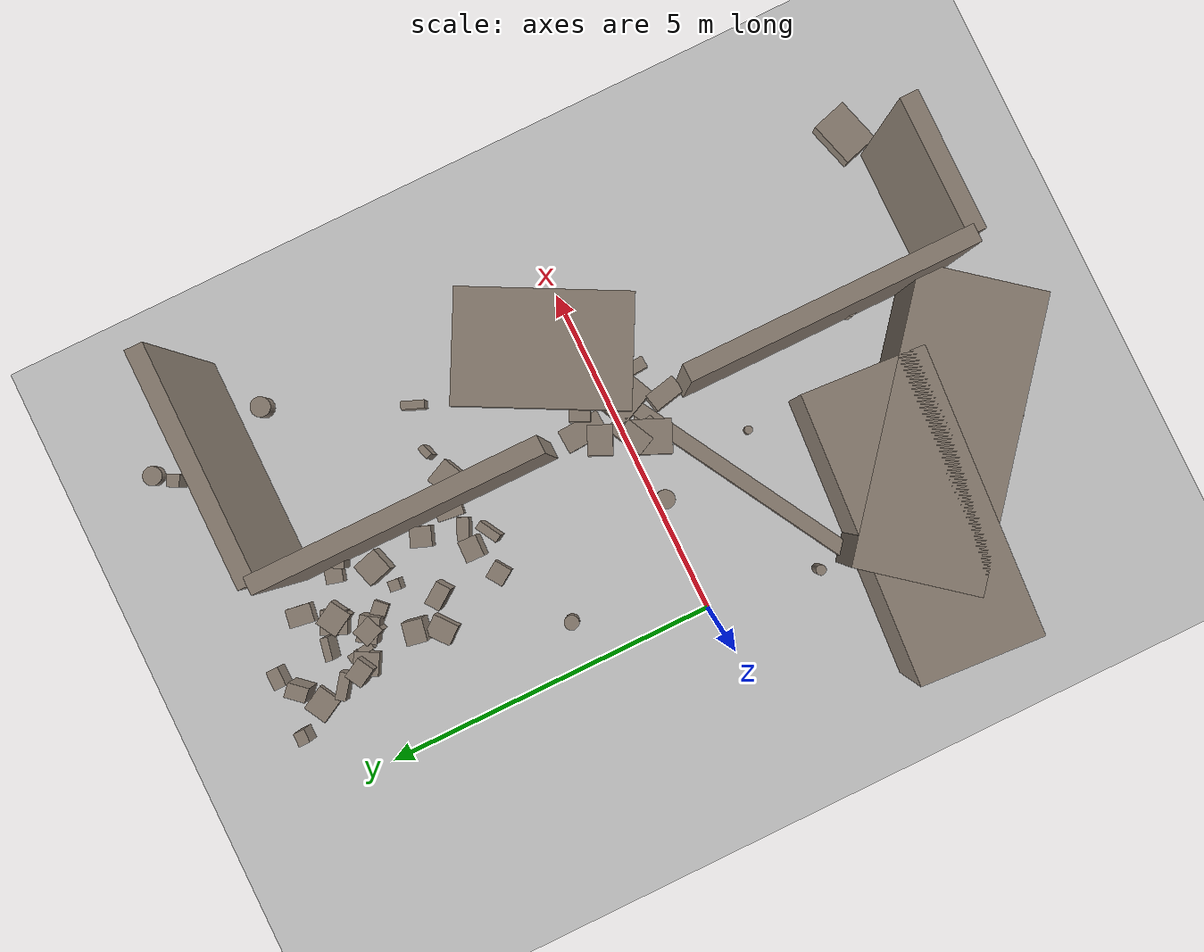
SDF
<sdf version="1.6">
 <world name="default">
  <model name="ground_plane">
   <static>1</static>
   <link name="link">
    <collision name="collision">
     <geometry><plane><normal>0 0 1</normal><size>100 100</size></plane></geometry>
     <surface><friction><ode><mu>100</mu><mu2>50</mu2></ode></friction></surface>
    </collision>
    <visual name="visual">
     <cast_shadows>0</cast_shadows>
     <geometry><plane><normal>0 0 1</normal><size>100 100</size></plane></geometry>
     <material>
      <script><uri>file://media/materials/scripts/gazebo.material</uri><name>Gazebo/Grey</name></script>
     </material>
    </visual>
   </link>
  </model>
  <model name="outer0_0">
   <static>1</static>
   <pose>3.000 -3.000 1.400 0 0.0000 1.5708</pose>
   <link name="l">
    <collision name="c"><geometry><box><size>4.000 0.250 2.800</size></box></geometry></collision>
    <visual name="v">
     <geometry><box><size>4.000 0.250 2.800</size></box></geometry>
     <material><ambient>0.55 0.5 0.45 1</ambient><diffuse>0.55 0.5 0.45 1</diffuse></material>
    </visual>
   </link>
  </model>
  <model name="outer0_1">
   <static>1</static>
   <pose>3.000 3.000 1.400 0 0.0000 1.5708</pose>
   <link name="l">
    <collision name="c"><geometry><box><size>4.000 0.250 2.800</size></box></geometry></collision>
    <visual name="v">
     <geometry><box><size>4.000 0.250 2.800</size></box></geometry>
     <material><ambient>0.55 0.5 0.45 1</ambient><diffuse>0.55 0.5 0.45 1</diffuse></material>
    </visual>
   </link>
  </model>
  <model name="outer2_0">
   <static>1</static>
   <pose>3.962 -5.000 1.400 0 0.0000 0.0000</pose>
   <link name="l">
    <collision name="c"><geometry><box><size>1.925 0.250 2.800</size></box></geometry></collision>
    <visual name="v">
     <geometry><box><size>1.925 0.250 2.800</size></box></geometry>
     <material><ambient>0.55 0.5 0.45 1</ambient><diffuse>0.55 0.5 0.45 1</diffuse></material>
    </visual>
   </link>
  </model>
  <model name="outer3_0">
   <static>1</static>
   <pose>4.643 5.000 1.400 0 0.0000 0.0000</pose>
   <link name="l">
    <collision name="c"><geometry><box><size>3.286 0.250 2.800</size></box></geometry></collision>
    <visual name="v">
     <geometry><box><size>3.286 0.250 2.800</size></box></geometry>
     <material><ambient>0.55 0.5 0.45 1</ambient><diffuse>0.55 0.5 0.45 1</diffuse></material>
    </visual>
   </link>
  </model>
  <model name="rubble_15">
   <static>1</static>
   <pose>3.180 -0.242 0.234 0 0.0000 0.4363</pose>
   <link name="l">
    <collision name="c"><geometry><box><size>0.410 0.648 0.467</size></box></geometry></collision>
    <visual name="v">
     <geometry><box><size>0.410 0.648 0.467</size></box></geometry>
     <material><ambient>0.55 0.5 0.45 1</ambient><diffuse>0.55 0.5 0.45 1</diffuse></material>
    </visual>
   </link>
  </model>
  <model name="rubble_16">
   <static>1</static>
   <pose>2.562 -0.337 0.169 0 0.0000 2.7282</pose>
   <link name="l">
    <collision name="c"><geometry><box><size>0.502 0.598 0.339</size></box></geometry></collision>
    <visual name="v">
     <geometry><box><size>0.502 0.598 0.339</size></box></geometry>
     <material><ambient>0.55 0.5 0.45 1</ambient><diffuse>0.55 0.5 0.45 1</diffuse></material>
    </visual>
   </link>
  </model>
  <model name="rubble_17">
   <static>1</static>
   <pose>2.827 0.339 0.270 0 0.0000 2.7171</pose>
   <link name="l">
    <collision name="c"><geometry><box><size>0.433 0.361 0.541</size></box></geometry></collision>
    <visual name="v">
     <geometry><box><size>0.433 0.361 0.541</size></box></geometry>
     <material><ambient>0.55 0.5 0.45 1</ambient><diffuse>0.55 0.5 0.45 1</diffuse></material>
    </visual>
   </link>
  </model>
  <model name="rubble_18">
   <static>1</static>
   <pose>3.053 0.508 0.091 0 0.0000 0.0569</pose>
   <link name="l">
    <collision name="c"><geometry><box><size>0.356 0.635 0.182</size></box></geometry></collision>
    <visual name="v">
     <geometry><box><size>0.356 0.635 0.182</size></box></geometry>
     <material><ambient>0.55 0.5 0.45 1</ambient><diffuse>0.55 0.5 0.45 1</diffuse></material>
    </visual>
   </link>
  </model>
  <model name="rubble_19">
   <static>1</static>
   <pose>3.021 -0.767 0.273 0 0.0000 0.2143</pose>
   <link name="l">
    <collision name="c"><geometry><box><size>0.268 0.468 0.547</size></box></geometry></collision>
    <visual name="v">
     <geometry><box><size>0.268 0.468 0.547</size></box></geometry>
     <material><ambient>0.55 0.5 0.45 1</ambient><diffuse>0.55 0.5 0.45 1</diffuse></material>
    </visual>
   </link>
  </model>
  <model name="rubble_20">
   <static>1</static>
   <pose>2.886 -0.317 0.119 0 0.0000 0.8856</pose>
   <link name="l">
    <collision name="c"><geometry><box><size>0.156 0.183 0.239</size></box></geometry></collision>
    <visual name="v">
     <geometry><box><size>0.156 0.183 0.239</size></box></geometry>
     <material><ambient>0.55 0.5 0.45 1</ambient><diffuse>0.55 0.5 0.45 1</diffuse></material>
    </visual>
   </link>
  </model>
  <model name="rubble_21">
   <static>1</static>
   <pose>2.730 -0.315 0.154 0 0.0000 1.8635</pose>
   <link name="l">
    <collision name="c"><geometry><box><size>0.341 0.151 0.307</size></box></geometry></collision>
    <visual name="v">
     <geometry><box><size>0.341 0.151 0.307</size></box></geometry>
     <material><ambient>0.55 0.5 0.45 1</ambient><diffuse>0.55 0.5 0.45 1</diffuse></material>
    </visual>
   </link>
  </model>
  <model name="rubble_22">
   <static>1</static>
   <pose>2.725 -0.079 0.234 0 0.0000 0.4569</pose>
   <link name="l">
    <collision name="c"><geometry><box><size>0.599 0.304 0.467</size></box></geometry></collision>
    <visual name="v">
     <geometry><box><size>0.599 0.304 0.467</size></box></geometry>
     <material><ambient>0.55 0.5 0.45 1</ambient><diffuse>0.55 0.5 0.45 1</diffuse></material>
    </visual>
   </link>
  </model>
  <model name="rubble_23">
   <static>1</static>
   <pose>3.373 0.401 0.235 0 0.0000 1.1332</pose>
   <link name="l">
    <collision name="c"><geometry><box><size>0.303 0.392 0.470</size></box></geometry></collision>
    <visual name="v">
     <geometry><box><size>0.303 0.392 0.470</size></box></geometry>
     <material><ambient>0.55 0.5 0.45 1</ambient><diffuse>0.55 0.5 0.45 1</diffuse></material>
    </visual>
   </link>
  </model>
  <model name="rubble_24">
   <static>1</static>
   <pose>3.567 -0.572 0.108 0 0.0000 1.6385</pose>
   <link name="l">
    <collision name="c"><geometry><box><size>0.306 0.181 0.217</size></box></geometry></collision>
    <visual name="v">
     <geometry><box><size>0.306 0.181 0.217</size></box></geometry>
     <material><ambient>0.55 0.5 0.45 1</ambient><diffuse>0.55 0.5 0.45 1</diffuse></material>
    </visual>
   </link>
  </model>
  <model name="rubble_37">
   <static>1</static>
   <pose>5.276 -4.745 0.145 0 0.0000 1.8576</pose>
   <link name="l">
    <collision name="c"><geometry><box><size>0.536 0.689 0.290</size></box></geometry></collision>
    <visual name="v">
     <geometry><box><size>0.536 0.689 0.290</size></box></geometry>
     <material><ambient>0.55 0.5 0.45 1</ambient><diffuse>0.55 0.5 0.45 1</diffuse></material>
    </visual>
   </link>
  </model>
  <model name="floor_0">
   <static>1</static>
   <pose>4.322 0.500 0.600 0 0.0000 1.0907</pose>
   <link name="l">
    <collision name="c"><geometry><box><size>2.543 1.679 0.200</size></box></geometry></collision>
    <visual name="v">
     <geometry><box><size>2.543 1.679 0.200</size></box></geometry>
     <material><ambient>0.55 0.5 0.45 1</ambient><diffuse>0.55 0.5 0.45 1</diffuse></material>
    </visual>
   </link>
  </model>
  <model name="car_0">
   <static>1</static>
   <pose>0.866 -3.957 0.700 0 0.0000 -0.6774</pose>
   <link name="l">
    <collision name="c"><geometry><box><size>4.200 1.800 1.400</size></box></geometry></collision>
    <visual name="v">
     <geometry><box><size>4.200 1.800 1.400</size></box></geometry>
     <material><ambient>0.55 0.5 0.45 1</ambient><diffuse>0.55 0.5 0.45 1</diffuse></material>
    </visual>
   </link>
  </model>
  <model name="car_1">
   <static>1</static>
   <pose>0.006 -3.107 0.700 0 0.0000 -0.0663</pose>
   <link name="l">
    <collision name="c"><geometry><box><size>4.200 1.800 1.400</size></box></geometry></collision>
    <visual name="v">
     <geometry><box><size>4.200 1.800 1.400</size></box></geometry>
     <material><ambient>0.55 0.5 0.45 1</ambient><diffuse>0.55 0.5 0.45 1</diffuse></material>
    </visual>
   </link>
  </model>
  <model name="pole_0">
   <static>1</static>
   <pose>1.116 -1.419 0.125 0 0.0000 0.5206</pose>
   <link name="l">
    <collision name="c"><geometry><box><size>5.218 0.220 0.250</size></box></geometry></collision>
    <visual name="v">
     <geometry><box><size>5.218 0.220 0.250</size></box></geometry>
     <material><ambient>0.55 0.5 0.45 1</ambient><diffuse>0.55 0.5 0.45 1</diffuse></material>
    </visual>
   </link>
  </model>
  <model name="rubble_63">
   <static>1</static>
   <pose>2.158 4.877 0.113 0 0.0000 1.1276</pose>
   <link name="l">
    <collision name="c"><geometry><box><size>0.391 0.348 0.227</size></box></geometry></collision>
    <visual name="v">
     <geometry><box><size>0.391 0.348 0.227</size></box></geometry>
     <material><ambient>0.55 0.5 0.45 1</ambient><diffuse>0.55 0.5 0.45 1</diffuse></material>
    </visual>
   </link>
  </model>
  <model name="rubble_64">
   <static>1</static>
   <pose>2.044 4.229 0.072 0 0.0000 0.7943</pose>
   <link name="l">
    <collision name="c"><geometry><box><size>0.216 0.212 0.143</size></box></geometry></collision>
    <visual name="v">
     <geometry><box><size>0.216 0.212 0.143</size></box></geometry>
     <material><ambient>0.55 0.5 0.45 1</ambient><diffuse>0.55 0.5 0.45 1</diffuse></material>
    </visual>
   </link>
  </model>
  <model name="rubble_65">
   <static>1</static>
   <pose>1.856 4.444 0.191 0 0.0000 2.5568</pose>
   <link name="l">
    <collision name="c"><geometry><box><size>0.383 0.298 0.382</size></box></geometry></collision>
    <visual name="v">
     <geometry><box><size>0.383 0.298 0.382</size></box></geometry>
     <material><ambient>0.55 0.5 0.45 1</ambient><diffuse>0.55 0.5 0.45 1</diffuse></material>
    </visual>
   </link>
  </model>
  <model name="rubble_66">
   <static>1</static>
   <pose>1.429 4.714 0.113 0 0.0000 1.0580</pose>
   <link name="l">
    <collision name="c"><geometry><box><size>0.368 0.344 0.225</size></box></geometry></collision>
    <visual name="v">
     <geometry><box><size>0.368 0.344 0.225</size></box></geometry>
     <material><ambient>0.55 0.5 0.45 1</ambient><diffuse>0.55 0.5 0.45 1</diffuse></material>
    </visual>
   </link>
  </model>
  <model name="rubble_67">
   <static>1</static>
   <pose>2.766 4.584 0.113 0 0.0000 2.8684</pose>
   <link name="l">
    <collision name="c"><geometry><box><size>0.237 0.251 0.226</size></box></geometry></collision>
    <visual name="v">
     <geometry><box><size>0.237 0.251 0.226</size></box></geometry>
     <material><ambient>0.55 0.5 0.45 1</ambient><diffuse>0.55 0.5 0.45 1</diffuse></material>
    </visual>
   </link>
  </model>
  <model name="rubble_68">
   <static>1</static>
   <pose>2.205 4.848 0.136 0 0.0000 0.5272</pose>
   <link name="l">
    <collision name="c"><geometry><box><size>0.340 0.378 0.272</size></box></geometry></collision>
    <visual name="v">
     <geometry><box><size>0.340 0.378 0.272</size></box></geometry>
     <material><ambient>0.55 0.5 0.45 1</ambient><diffuse>0.55 0.5 0.45 1</diffuse></material>
    </visual>
   </link>
  </model>
  <model name="rubble_69">
   <static>1</static>
   <pose>1.835 4.457 0.193 0 0.0000 1.9446</pose>
   <link name="l">
    <collision name="c"><geometry><box><size>0.313 0.281 0.387</size></box></geometry></collision>
    <visual name="v">
     <geometry><box><size>0.313 0.281 0.387</size></box></geometry>
     <material><ambient>0.55 0.5 0.45 1</ambient><diffuse>0.55 0.5 0.45 1</diffuse></material>
    </visual>
   </link>
  </model>
  <model name="rubble_70">
   <static>1</static>
   <pose>1.796 5.905 0.193 0 0.0000 1.5792</pose>
   <link name="l">
    <collision name="c"><geometry><box><size>0.181 0.285 0.386</size></box></geometry></collision>
    <visual name="v">
     <geometry><box><size>0.181 0.285 0.386</size></box></geometry>
     <material><ambient>0.55 0.5 0.45 1</ambient><diffuse>0.55 0.5 0.45 1</diffuse></material>
    </visual>
   </link>
  </model>
  <model name="rubble_71">
   <static>1</static>
   <pose>1.179 5.540 0.066 0 0.0000 2.0733</pose>
   <link name="l">
    <collision name="c"><geometry><box><size>0.384 0.364 0.132</size></box></geometry></collision>
    <visual name="v">
     <geometry><box><size>0.384 0.364 0.132</size></box></geometry>
     <material><ambient>0.55 0.5 0.45 1</ambient><diffuse>0.55 0.5 0.45 1</diffuse></material>
    </visual>
   </link>
  </model>
  <model name="rubble_72">
   <static>1</static>
   <pose>1.501 5.696 0.251 0 0.0000 2.4132</pose>
   <link name="l">
    <collision name="c"><geometry><box><size>0.211 0.309 0.501</size></box></geometry></collision>
    <visual name="v">
     <geometry><box><size>0.211 0.309 0.501</size></box></geometry>
     <material><ambient>0.55 0.5 0.45 1</ambient><diffuse>0.55 0.5 0.45 1</diffuse></material>
    </visual>
   </link>
  </model>
  <model name="rubble_73">
   <static>1</static>
   <pose>1.852 3.340 0.248 0 0.0000 2.1919</pose>
   <link name="l">
    <collision name="c"><geometry><box><size>0.346 0.232 0.496</size></box></geometry></collision>
    <visual name="v">
     <geometry><box><size>0.346 0.232 0.496</size></box></geometry>
     <material><ambient>0.55 0.5 0.45 1</ambient><diffuse>0.55 0.5 0.45 1</diffuse></material>
    </visual>
   </link>
  </model>
  <model name="rubble_74">
   <static>1</static>
   <pose>2.255 3.846 0.184 0 0.0000 3.0223</pose>
   <link name="l">
    <collision name="c"><geometry><box><size>0.154 0.159 0.368</size></box></geometry></collision>
    <visual name="v">
     <geometry><box><size>0.154 0.159 0.368</size></box></geometry>
     <material><ambient>0.55 0.5 0.45 1</ambient><diffuse>0.55 0.5 0.45 1</diffuse></material>
    </visual>
   </link>
  </model>
  <model name="rubble_75">
   <static>1</static>
   <pose>1.364 4.790 0.244 0 0.0000 2.0772</pose>
   <link name="l">
    <collision name="c"><geometry><box><size>0.313 0.275 0.487</size></box></geometry></collision>
    <visual name="v">
     <geometry><box><size>0.313 0.275 0.487</size></box></geometry>
     <material><ambient>0.55 0.5 0.45 1</ambient><diffuse>0.55 0.5 0.45 1</diffuse></material>
    </visual>
   </link>
  </model>
  <model name="rubble_76">
   <static>1</static>
   <pose>1.860 5.056 0.257 0 0.0000 2.9495</pose>
   <link name="l">
    <collision name="c"><geometry><box><size>0.336 0.108 0.514</size></box></geometry></collision>
    <visual name="v">
     <geometry><box><size>0.336 0.108 0.514</size></box></geometry>
     <material><ambient>0.55 0.5 0.45 1</ambient><diffuse>0.55 0.5 0.45 1</diffuse></material>
    </visual>
   </link>
  </model>
  <model name="rubble_77">
   <static>1</static>
   <pose>2.455 5.264 0.118 0 0.0000 1.4184</pose>
   <link name="l">
    <collision name="c"><geometry><box><size>0.365 0.273 0.237</size></box></geometry></collision>
    <visual name="v">
     <geometry><box><size>0.365 0.273 0.237</size></box></geometry>
     <material><ambient>0.55 0.5 0.45 1</ambient><diffuse>0.55 0.5 0.45 1</diffuse></material>
    </visual>
   </link>
  </model>
  <model name="rubble_78">
   <static>1</static>
   <pose>1.394 3.525 0.155 0 0.0000 0.6729</pose>
   <link name="l">
    <collision name="c"><geometry><box><size>0.388 0.306 0.310</size></box></geometry></collision>
    <visual name="v">
     <geometry><box><size>0.388 0.306 0.310</size></box></geometry>
     <material><ambient>0.55 0.5 0.45 1</ambient><diffuse>0.55 0.5 0.45 1</diffuse></material>
    </visual>
   </link>
  </model>
  <model name="rubble_79">
   <static>1</static>
   <pose>2.983 4.454 0.192 0 0.0000 2.6309</pose>
   <link name="l">
    <collision name="c"><geometry><box><size>0.288 0.330 0.385</size></box></geometry></collision>
    <visual name="v">
     <geometry><box><size>0.288 0.330 0.385</size></box></geometry>
     <material><ambient>0.55 0.5 0.45 1</ambient><diffuse>0.55 0.5 0.45 1</diffuse></material>
    </visual>
   </link>
  </model>
  <model name="rubble_80">
   <static>1</static>
   <pose>1.609 4.714 0.100 0 0.0000 0.1461</pose>
   <link name="l">
    <collision name="c"><geometry><box><size>0.120 0.384 0.199</size></box></geometry></collision>
    <visual name="v">
     <geometry><box><size>0.120 0.384 0.199</size></box></geometry>
     <material><ambient>0.55 0.5 0.45 1</ambient><diffuse>0.55 0.5 0.45 1</diffuse></material>
    </visual>
   </link>
  </model>
  <model name="rubble_81">
   <static>1</static>
   <pose>2.242 2.623 0.291 0 0.0000 3.1133</pose>
   <link name="l">
    <collision name="c"><geometry><box><size>0.319 0.269 0.581</size></box></geometry></collision>
    <visual name="v">
     <geometry><box><size>0.319 0.269 0.581</size></box></geometry>
     <material><ambient>0.55 0.5 0.45 1</ambient><diffuse>0.55 0.5 0.45 1</diffuse></material>
    </visual>
   </link>
  </model>
  <model name="rubble_82">
   <static>1</static>
   <pose>3.311 2.523 0.248 0 0.0000 2.0130</pose>
   <link name="l">
    <collision name="c"><geometry><box><size>0.386 0.332 0.495</size></box></geometry></collision>
    <visual name="v">
     <geometry><box><size>0.386 0.332 0.495</size></box></geometry>
     <material><ambient>0.55 0.5 0.45 1</ambient><diffuse>0.55 0.5 0.45 1</diffuse></material>
    </visual>
   </link>
  </model>
  <model name="rubble_83">
   <static>1</static>
   <pose>2.548 2.629 0.199 0 0.0000 1.1554</pose>
   <link name="l">
    <collision name="c"><geometry><box><size>0.171 0.332 0.399</size></box></geometry></collision>
    <visual name="v">
     <geometry><box><size>0.171 0.332 0.399</size></box></geometry>
     <material><ambient>0.55 0.5 0.45 1</ambient><diffuse>0.55 0.5 0.45 1</diffuse></material>
    </visual>
   </link>
  </model>
  <model name="rubble_84">
   <static>1</static>
   <pose>2.957 2.709 0.093 0 0.0000 1.4475</pose>
   <link name="l">
    <collision name="c"><geometry><box><size>0.392 0.383 0.186</size></box></geometry></collision>
    <visual name="v">
     <geometry><box><size>0.392 0.383 0.186</size></box></geometry>
     <material><ambient>0.55 0.5 0.45 1</ambient><diffuse>0.55 0.5 0.45 1</diffuse></material>
    </visual>
   </link>
  </model>
  <model name="rubble_85">
   <static>1</static>
   <pose>2.712 3.226 0.157 0 0.0000 2.7813</pose>
   <link name="l">
    <collision name="c"><geometry><box><size>0.297 0.310 0.314</size></box></geometry></collision>
    <visual name="v">
     <geometry><box><size>0.297 0.310 0.314</size></box></geometry>
     <material><ambient>0.55 0.5 0.45 1</ambient><diffuse>0.55 0.5 0.45 1</diffuse></material>
    </visual>
   </link>
  </model>
  <model name="rubble_86">
   <static>1</static>
   <pose>3.753 2.618 0.283 0 0.0000 1.8602</pose>
   <link name="l">
    <collision name="c"><geometry><box><size>0.103 0.184 0.565</size></box></geometry></collision>
    <visual name="v">
     <geometry><box><size>0.103 0.184 0.565</size></box></geometry>
     <material><ambient>0.55 0.5 0.45 1</ambient><diffuse>0.55 0.5 0.45 1</diffuse></material>
    </visual>
   </link>
  </model>
  <model name="rubble_87">
   <static>1</static>
   <pose>2.614 4.008 0.213 0 0.0000 1.8519</pose>
   <link name="l">
    <collision name="c"><geometry><box><size>0.375 0.360 0.426</size></box></geometry></collision>
    <visual name="v">
     <geometry><box><size>0.375 0.360 0.426</size></box></geometry>
     <material><ambient>0.55 0.5 0.45 1</ambient><diffuse>0.55 0.5 0.45 1</diffuse></material>
    </visual>
   </link>
  </model>
  <model name="rubble_88">
   <static>1</static>
   <pose>2.355 2.305 0.294 0 0.0000 2.0836</pose>
   <link name="l">
    <collision name="c"><geometry><box><size>0.124 0.349 0.589</size></box></geometry></collision>
    <visual name="v">
     <geometry><box><size>0.124 0.349 0.589</size></box></geometry>
     <material><ambient>0.55 0.5 0.45 1</ambient><diffuse>0.55 0.5 0.45 1</diffuse></material>
    </visual>
   </link>
  </model>
  <model name="rubble_89">
   <static>1</static>
   <pose>3.040 3.301 0.112 0 0.0000 2.9071</pose>
   <link name="l">
    <collision name="c"><geometry><box><size>0.226 0.388 0.224</size></box></geometry></collision>
    <visual name="v">
     <geometry><box><size>0.226 0.388 0.224</size></box></geometry>
     <material><ambient>0.55 0.5 0.45 1</ambient><diffuse>0.55 0.5 0.45 1</diffuse></material>
    </visual>
   </link>
  </model>
  <model name="rubble_90">
   <static>1</static>
   <pose>1.542 3.846 0.263 0 0.0000 1.3823</pose>
   <link name="l">
    <collision name="c"><geometry><box><size>0.297 0.334 0.525</size></box></geometry></collision>
    <visual name="v">
     <geometry><box><size>0.297 0.334 0.525</size></box></geometry>
     <material><ambient>0.55 0.5 0.45 1</ambient><diffuse>0.55 0.5 0.45 1</diffuse></material>
    </visual>
   </link>
  </model>
  <model name="debris_2">
   <static>1</static>
   <pose>5.380 4.489 0.131 0 0.0000 0.0000</pose>
   <link name="l">
    <collision name="c">
     <geometry><cylinder><radius>0.149</radius><length>0.263</length></cylinder></geometry>
    </collision>
    <visual name="v">
     <geometry><cylinder><radius>0.149</radius><length>0.263</length></cylinder></geometry>
     <material><ambient>0.55 0.5 0.45 1</ambient><diffuse>0.55 0.5 0.45 1</diffuse></material>
    </visual>
   </link>
  </model>
  <model name="debris_3">
   <static>1</static>
   <pose>5.175 6.321 0.087 0 0.0000 0.0000</pose>
   <link name="l">
    <collision name="c">
     <geometry><cylinder><radius>0.141</radius><length>0.175</length></cylinder></geometry>
    </collision>
    <visual name="v">
     <geometry><cylinder><radius>0.141</radius><length>0.175</length></cylinder></geometry>
     <material><ambient>0.55 0.5 0.45 1</ambient><diffuse>0.55 0.5 0.45 1</diffuse></material>
    </visual>
   </link>
  </model>
  <model name="debris_4">
   <static>1</static>
   <pose>1.287 5.132 0.142 0 0.0000 0.9378</pose>
   <link name="l">
    <collision name="c"><geometry><box><size>0.157 0.395 0.283</size></box></geometry></collision>
    <visual name="v">
     <geometry><box><size>0.157 0.395 0.283</size></box></geometry>
     <material><ambient>0.55 0.5 0.45 1</ambient><diffuse>0.55 0.5 0.45 1</diffuse></material>
    </visual>
   </link>
  </model>
  <model name="debris_10">
   <static>1</static>
   <pose>0.542 -5.166 0.166 0 0.0000 0.0000</pose>
   <link name="l">
    <collision name="c">
     <geometry><cylinder><radius>0.059</radius><length>0.331</length></cylinder></geometry>
    </collision>
    <visual name="v">
     <geometry><cylinder><radius>0.059</radius><length>0.331</length></cylinder></geometry>
     <material><ambient>0.55 0.5 0.45 1</ambient><diffuse>0.55 0.5 0.45 1</diffuse></material>
    </visual>
   </link>
  </model>
  <model name="debris_11">
   <static>1</static>
   <pose>1.672 -0.130 0.166 0 0.0000 0.0000</pose>
   <link name="l">
    <collision name="c">
     <geometry><cylinder><radius>0.140</radius><length>0.331</length></cylinder></geometry>
    </collision>
    <visual name="v">
     <geometry><cylinder><radius>0.140</radius><length>0.331</length></cylinder></geometry>
     <material><ambient>0.55 0.5 0.45 1</ambient><diffuse>0.55 0.5 0.45 1</diffuse></material>
    </visual>
   </link>
  </model>
  <model name="debris_13">
   <static>1</static>
   <pose>0.641 -5.035 0.129 0 0.0000 2.6500</pose>
   <link name="l">
    <collision name="c"><geometry><box><size>0.115 0.292 0.258</size></box></geometry></collision>
    <visual name="v">
     <geometry><box><size>0.115 0.292 0.258</size></box></geometry>
     <material><ambient>0.55 0.5 0.45 1</ambient><diffuse>0.55 0.5 0.45 1</diffuse></material>
    </visual>
   </link>
  </model>
  <model name="debris_16">
   <static>1</static>
   <pose>0.681 1.832 0.125 0 0.0000 0.0000</pose>
   <link name="l">
    <collision name="c">
     <geometry><cylinder><radius>0.108</radius><length>0.251</length></cylinder></geometry>
    </collision>
    <visual name="v">
     <geometry><cylinder><radius>0.108</radius><length>0.251</length></cylinder></geometry>
     <material><ambient>0.55 0.5 0.45 1</ambient><diffuse>0.55 0.5 0.45 1</diffuse></material>
    </visual>
   </link>
  </model>
  <model name="debris_19">
   <static>1</static>
   <pose>-0.175 -1.660 0.210 0 0.0000 0.0000</pose>
   <link name="l">
    <collision name="c">
     <geometry><cylinder><radius>0.075</radius><length>0.421</length></cylinder></geometry>
    </collision>
    <visual name="v">
     <geometry><cylinder><radius>0.075</radius><length>0.421</length></cylinder></geometry>
     <material><ambient>0.55 0.5 0.45 1</ambient><diffuse>0.55 0.5 0.45 1</diffuse></material>
    </visual>
   </link>
  </model>
  <model name="debris_21">
   <static>1</static>
   <pose>0.893 5.929 0.204 0 0.0000 1.5858</pose>
   <link name="l">
    <collision name="c"><geometry><box><size>0.167 0.203 0.408</size></box></geometry></collision>
    <visual name="v">
     <geometry><box><size>0.167 0.203 0.408</size></box></geometry>
     <material><ambient>0.55 0.5 0.45 1</ambient><diffuse>0.55 0.5 0.45 1</diffuse></material>
    </visual>
   </link>
  </model>
  <model name="debris_23">
   <static>1</static>
   <pose>2.924 -3.664 0.203 0 0.0000 0.0000</pose>
   <link name="l">
    <collision name="c">
     <geometry><cylinder><radius>0.073</radius><length>0.407</length></cylinder></geometry>
    </collision>
    <visual name="v">
     <geometry><cylinder><radius>0.073</radius><length>0.407</length></cylinder></geometry>
     <material><ambient>0.55 0.5 0.45 1</ambient><diffuse>0.55 0.5 0.45 1</diffuse></material>
    </visual>
   </link>
  </model>
  <model name="debris_24">
   <static>1</static>
   <pose>4.190 -0.130 0.072 0 0.0000 0.0000</pose>
   <link name="l">
    <collision name="c">
     <geometry><cylinder><radius>0.122</radius><length>0.145</length></cylinder></geometry>
    </collision>
    <visual name="v">
     <geometry><cylinder><radius>0.122</radius><length>0.145</length></cylinder></geometry>
     <material><ambient>0.55 0.5 0.45 1</ambient><diffuse>0.55 0.5 0.45 1</diffuse></material>
    </visual>
   </link>
  </model>
  <model name="debris_26">
   <static>1</static>
   <pose>4.958 6.027 0.181 0 0.0000 1.0789</pose>
   <link name="l">
    <collision name="c"><geometry><box><size>0.185 0.183 0.362</size></box></geometry></collision>
    <visual name="v">
     <geometry><box><size>0.185 0.183 0.362</size></box></geometry>
     <material><ambient>0.55 0.5 0.45 1</ambient><diffuse>0.55 0.5 0.45 1</diffuse></material>
    </visual>
   </link>
  </model>
  <model name="debris_27">
   <static>1</static>
   <pose>2.044 -1.631 0.108 0 0.0000 0.0000</pose>
   <link name="l">
    <collision name="c">
     <geometry><cylinder><radius>0.059</radius><length>0.217</length></cylinder></geometry>
    </collision>
    <visual name="v">
     <geometry><cylinder><radius>0.059</radius><length>0.217</length></cylinder></geometry>
     <material><ambient>0.55 0.5 0.45 1</ambient><diffuse>0.55 0.5 0.45 1</diffuse></material>
    </visual>
   </link>
  </model>
  <model name="debris_28">
   <static>1</static>
   <pose>4.452 2.516 0.168 0 0.0000 2.7696</pose>
   <link name="l">
    <collision name="c"><geometry><box><size>0.119 0.341 0.336</size></box></geometry></collision>
    <visual name="v">
     <geometry><box><size>0.119 0.341 0.336</size></box></geometry>
     <material><ambient>0.55 0.5 0.45 1</ambient><diffuse>0.55 0.5 0.45 1</diffuse></material>
    </visual>
   </link>
  </model>
  <model name="debris_31">
   <static>1</static>
   <pose>1.762 2.461 0.135 0 0.0000 2.1634</pose>
   <link name="l">
    <collision name="c"><geometry><box><size>0.269 0.269 0.270</size></box></geometry></collision>
    <visual name="v">
     <geometry><box><size>0.269 0.269 0.270</size></box></geometry>
     <material><ambient>0.55 0.5 0.45 1</ambient><diffuse>0.55 0.5 0.45 1</diffuse></material>
    </visual>
   </link>
  </model>
 </world>
</sdf>
